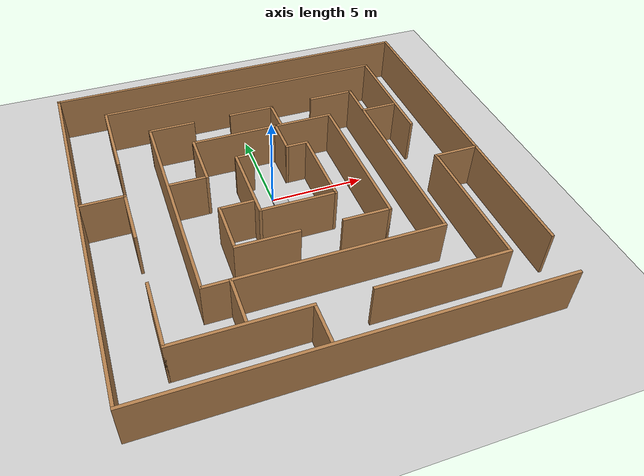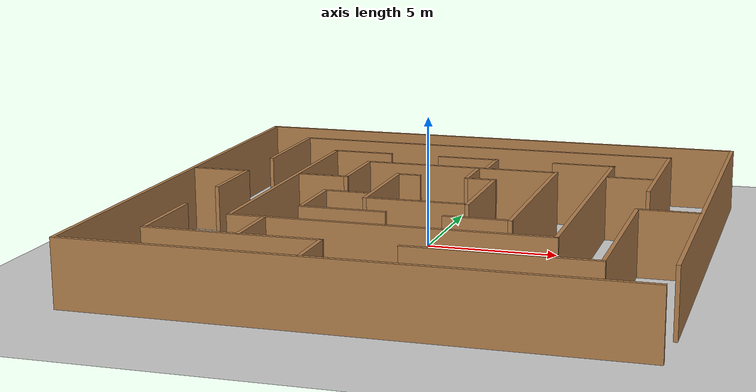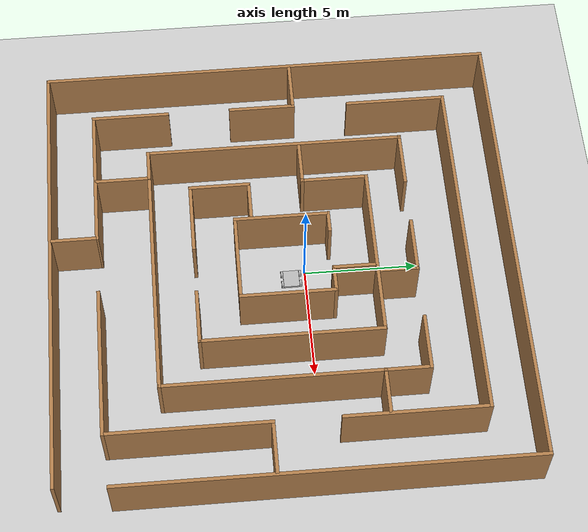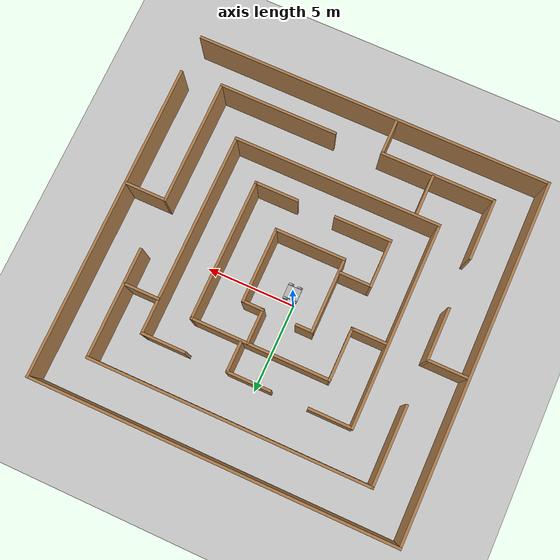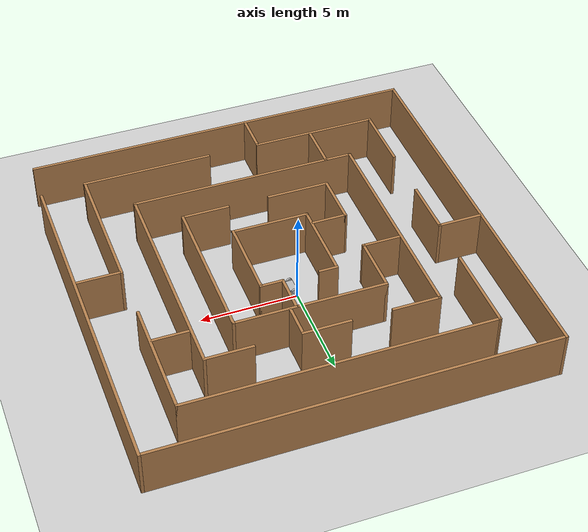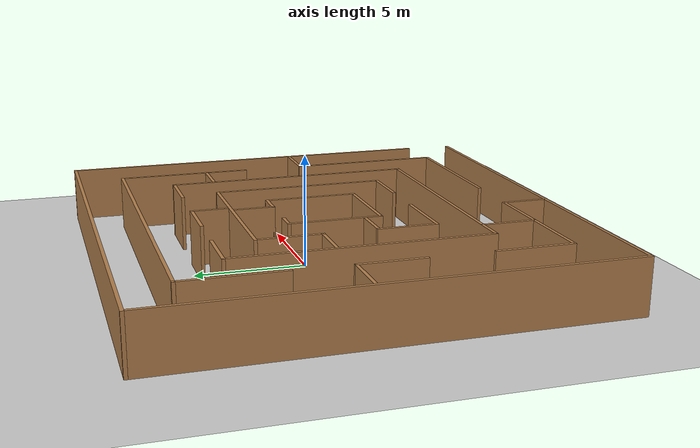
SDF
<sdf version="1.7">
 <world name="default">
  <light name="sun" type="directional">
   <pose>0 0 10 0 -0 0</pose>
   <diffuse>0.8 0.8 0.8 1</diffuse>
   <specular>0.2 0.2 0.2 1</specular>
   <attenuation>
    <range>1000</range>
    <constant>0.9</constant>
    <linear>0.01</linear>
    <quadratic>0.001</quadratic>
   </attenuation>
   <direction>-0.5 0.1 -0.9</direction>
   <spot><inner_angle>0</inner_angle><outer_angle>0</outer_angle><falloff>0</falloff></spot>
  </light>
  <model name="ground_plane">
   <static>1</static>
   <link name="link">
    <collision name="collision">
     <geometry><plane><normal>0 0 1</normal><size>100 100</size></plane></geometry>
     <surface>
      <contact><collide_bitmask>65535</collide_bitmask></contact>
      <friction><ode><mu>100</mu><mu2>50</mu2></ode></friction>
     </surface>
    </collision>
    <visual name="visual">
     <cast_shadows>0</cast_shadows>
     <geometry><plane><normal>0 0 1</normal><size>100 100</size></plane></geometry>
     <material>
      <script><uri>file://media/materials/scripts/gazebo.material</uri><name>Gazebo/Grey</name></script>
     </material>
    </visual>
   </link>
  </model>
  <gravity>0 0 -9.8</gravity>
  <magnetic_field>6e-06 2.3e-05 -4.2e-05</magnetic_field>
  <atmosphere type="adiabatic"/>
  <physics type="ode">
   <max_step_size>0.001</max_step_size>
   <real_time_factor>1</real_time_factor>
   <real_time_update_rate>1000</real_time_update_rate>
  </physics>
  <scene><ambient>0.4 0.4 0.4 1</ambient><background>0.7 0.7 0.7 1</background><shadows>1</shadows></scene>
  <spherical_coordinates>
   <surface_model>EARTH_WGS84</surface_model>
   <latitude_deg>0</latitude_deg>
   <longitude_deg>0</longitude_deg>
   <elevation>0</elevation>
   <heading_deg>0</heading_deg>
  </spherical_coordinates>
  <model name="robot">
   <link name="base_footprint">
    <inertial>
     <pose>0 0 0.135 0 -0 0</pose>
     <mass>0.5</mass>
     <inertia><ixx>0.0415</ixx><ixy>0</ixy><ixz>0</ixz><iyy>0.0415</iyy><iyz>0</iyz><izz>0.0415</izz></inertia>
    </inertial>
    <collision name="base_footprint_fixed_joint_lump__base_link_collision">
     <pose>0 0 0.135 0 -0 0</pose>
     <geometry><box><size>0.8 0.7 0.1</size></box></geometry>
    </collision>
    <visual name="base_footprint_fixed_joint_lump__base_link_visual">
     <pose>0 0 0.135 0 -0 0</pose>
     <geometry><box><size>0.8 0.7 0.1</size></box></geometry>
    </visual>
   </link>
   <joint name="wheel_front_left_joint" type="revolute">
    <pose relative_to="base_footprint">-0.25 -0.4 0.135 0 -0 0</pose>
    <parent>base_footprint</parent>
    <child>wheel_front_left_link</child>
    <axis>
     <xyz>0 1 0</xyz>
     <limit><effort>1000</effort><velocity>100</velocity><lower>-1e+16</lower><upper>1e+16</upper></limit>
     <dynamics>
      <damping>1</damping>
      <friction>1</friction>
      <spring_reference>0</spring_reference>
      <spring_stiffness>0</spring_stiffness>
     </dynamics>
    </axis>
   </joint>
   <link name="wheel_front_left_link">
    <pose relative_to="wheel_front_left_joint">0 0 0 0 -0 0</pose>
    <inertial>
     <mass>0.25</mass>
     <inertia><ixx>0.01125</ixx><ixy>0</ixy><ixz>0</ixz><iyy>0.01125</iyy><iyz>0</iyz><izz>0.01125</izz></inertia>
    </inertial>
    <collision name="wheel_front_left_link_collision">
     <pose>0 0 0 1.57 -0 0</pose>
     <geometry><cylinder><length>0.1</length><radius>0.15</radius></cylinder></geometry>
    </collision>
    <visual name="wheel_front_left_link_fixed_joint_lump__wheel_front_left_visual_visual">
     <pose>0 0 0 1.57 -0 0</pose>
     <geometry><cylinder><length>0.1</length><radius>0.15</radius></cylinder></geometry>
    </visual>
   </link>
   <joint name="wheel_front_right_joint" type="revolute">
    <pose relative_to="base_footprint">-0.25 0.4 0.135 0 -0 0</pose>
    <parent>base_footprint</parent>
    <child>wheel_front_right_link</child>
    <axis>
     <xyz>0 1 0</xyz>
     <limit><effort>1000</effort><velocity>100</velocity><lower>-1e+16</lower><upper>1e+16</upper></limit>
     <dynamics>
      <damping>1</damping>
      <friction>1</friction>
      <spring_reference>0</spring_reference>
      <spring_stiffness>0</spring_stiffness>
     </dynamics>
    </axis>
   </joint>
   <link name="wheel_front_right_link">
    <pose relative_to="wheel_front_right_joint">0 0 0 0 -0 0</pose>
    <inertial>
     <mass>0.25</mass>
     <inertia><ixx>0.01125</ixx><ixy>0</ixy><ixz>0</ixz><iyy>0.01125</iyy><iyz>0</iyz><izz>0.01125</izz></inertia>
    </inertial>
    <collision name="wheel_front_right_link_collision">
     <pose>0 0 0 1.57 -0 0</pose>
     <geometry><cylinder><length>0.1</length><radius>0.15</radius></cylinder></geometry>
    </collision>
    <visual name="wheel_front_right_link_fixed_joint_lump__wheel_front_right_visual_visual">
     <pose>0 0 0 1.57 -0 0</pose>
     <geometry><cylinder><length>0.1</length><radius>0.15</radius></cylinder></geometry>
    </visual>
   </link>
   <joint name="wheel_rear_left_joint" type="revolute">
    <pose relative_to="base_footprint">0.25 -0.4 0.135 0 -0 0</pose>
    <parent>base_footprint</parent>
    <child>wheel_rear_left_link</child>
    <axis>
     <xyz>0 1 0</xyz>
     <limit><effort>1000</effort><velocity>100</velocity><lower>-1e+16</lower><upper>1e+16</upper></limit>
     <dynamics>
      <damping>1</damping>
      <friction>1</friction>
      <spring_reference>0</spring_reference>
      <spring_stiffness>0</spring_stiffness>
     </dynamics>
    </axis>
   </joint>
   <link name="wheel_rear_left_link">
    <pose relative_to="wheel_rear_left_joint">0 0 0 0 -0 0</pose>
    <inertial>
     <mass>0.25</mass>
     <inertia><ixx>0.01125</ixx><ixy>0</ixy><ixz>0</ixz><iyy>0.01125</iyy><iyz>0</iyz><izz>0.01125</izz></inertia>
    </inertial>
    <collision name="wheel_rear_left_link_collision">
     <pose>0 0 0 1.57 -0 0</pose>
     <geometry><cylinder><length>0.1</length><radius>0.15</radius></cylinder></geometry>
    </collision>
    <visual name="wheel_rear_left_link_fixed_joint_lump__wheel_rear_left_visual_visual">
     <pose>0 0 0 1.57 -0 0</pose>
     <geometry><cylinder><length>0.1</length><radius>0.15</radius></cylinder></geometry>
    </visual>
   </link>
   <joint name="wheel_rear_right_joint" type="revolute">
    <pose relative_to="base_footprint">0.25 0.4 0.135 0 -0 0</pose>
    <parent>base_footprint</parent>
    <child>wheel_rear_right_link</child>
    <axis>
     <xyz>0 1 0</xyz>
     <limit><effort>1000</effort><velocity>100</velocity><lower>-1e+16</lower><upper>1e+16</upper></limit>
     <dynamics>
      <damping>1</damping>
      <friction>1</friction>
      <spring_reference>0</spring_reference>
      <spring_stiffness>0</spring_stiffness>
     </dynamics>
    </axis>
   </joint>
   <link name="wheel_rear_right_link">
    <pose relative_to="wheel_rear_right_joint">0 0 0 0 -0 0</pose>
    <inertial>
     <mass>0.25</mass>
     <inertia><ixx>0.01125</ixx><ixy>0</ixy><ixz>0</ixz><iyy>0.01125</iyy><iyz>0</iyz><izz>0.01125</izz></inertia>
    </inertial>
    <collision name="wheel_rear_right_link_collision">
     <pose>0 0 0 1.57 -0 0</pose>
     <geometry><cylinder><length>0.1</length><radius>0.15</radius></cylinder></geometry>
    </collision>
    <visual name="wheel_rear_right_link_fixed_joint_lump__wheel_rear_right_visual_visual">
     <pose>0 0 0 1.57 -0 0</pose>
     <geometry><cylinder><length>0.1</length><radius>0.15</radius></cylinder></geometry>
    </visual>
   </link>
   <static>0</static>
   <plugin name="skid_steer_drive_controller" filename="libgazebo_ros_skid_steer_drive.so">
    <updateRate>100.0</updateRate>
    <robotNamespace>/</robotNamespace>
    <leftFrontJoint>wheel_front_left_joint</leftFrontJoint>
    <rightFrontJoint>wheel_front_right_joint</rightFrontJoint>
    <leftRearJoint>wheel_rear_left_joint</leftRearJoint>
    <rightRearJoint>wheel_rear_right_joint</rightRearJoint>
    <wheelSeparation>0.8</wheelSeparation>
    <wheelDiameter>0.3</wheelDiameter>
    <robotBaseFrame>base_footprint</robotBaseFrame>
    <torque>10</torque>
    <topicName>cmd_vel</topicName>
    <odometryTopic>odom</odometryTopic>
    <odometryFrame>odom</odometryFrame>
    <commandTopic>cmd_vel</commandTopic>
    <topic_name_twist>cmd_vel</topic_name_twist>
    <topic_name_odometry>odom</topic_name_odometry>
    <topic_name_joint>joint</topic_name_joint>
    <broadcastTF>1</broadcastTF>
    <covariance_x>0.0001</covariance_x>
    <covariance_y>0.0001</covariance_y>
    <covariance_yaw>0.01</covariance_yaw>
   </plugin>
   <pose>0.315821 -0.624867 0.015019 2e-05 1.3e-05 0.009214</pose>
  </model>
  <model name="new_world.world">
   <pose>0.40995 -1.00865 0 0 -0 0</pose>
   <link name="Wall_0">
    <collision name="Wall_0_Collision">
     <geometry><box><size>20.25 0.15 2.5</size></box></geometry>
     <pose>0 0 1.25 0 -0 0</pose>
    </collision>
    <visual name="Wall_0_Visual">
     <pose>0 0 1.25 0 -0 0</pose>
     <geometry><box><size>20.25 0.15 2.5</size></box></geometry>
     <material>
      <script><uri>file://media/materials/scripts/gazebo.material</uri><name>Gazebo/Wood</name></script>
      <ambient>1 1 1 1</ambient>
     </material>
     <meta><layer>0</layer></meta>
    </visual>
    <pose>-10.1228 1e-05 0 0 -0 -1.5708</pose>
   </link>
   <link name="Wall_101">
    <collision name="Wall_101_Collision">
     <geometry><box><size>2 0.15 2.5</size></box></geometry>
     <pose>0 0 1.25 0 -0 0</pose>
    </collision>
    <visual name="Wall_101_Visual">
     <pose>0 0 1.25 0 -0 0</pose>
     <geometry><box><size>2 0.15 2.5</size></box></geometry>
     <material>
      <script><uri>file://media/materials/scripts/gazebo.material</uri><name>Gazebo/Wood</name></script>
      <ambient>1 1 1 1</ambient>
     </material>
     <meta><layer>0</layer></meta>
    </visual>
    <pose>6.80976 3.82073 0 0 -0 0</pose>
   </link>
   <link name="Wall_11">
    <collision name="Wall_11_Collision">
     <geometry><box><size>6.5 0.15 2.5</size></box></geometry>
     <pose>0 0 1.25 0 -0 0</pose>
    </collision>
    <visual name="Wall_11_Visual">
     <pose>0 0 1.25 0 -0 0</pose>
     <geometry><box><size>6.5 0.15 2.5</size></box></geometry>
     <material>
      <script><uri>file://media/materials/scripts/gazebo.material</uri><name>Gazebo/Wood</name></script>
      <ambient>1 1 1 1</ambient>
     </material>
     <meta><layer>0</layer></meta>
    </visual>
    <pose>-4.67764 -8.00551 0 0 -0 0</pose>
   </link>
   <link name="Wall_13">
    <collision name="Wall_13_Collision">
     <geometry><box><size>2 0.15 2.5</size></box></geometry>
     <pose>0 0 1.25 0 -0 0</pose>
    </collision>
    <visual name="Wall_13_Visual">
     <pose>0 0 1.25 0 -0 0</pose>
     <geometry><box><size>2 0.15 2.5</size></box></geometry>
     <material>
      <script><uri>file://media/materials/scripts/gazebo.material</uri><name>Gazebo/Wood</name></script>
      <ambient>1 1 1 1</ambient>
     </material>
     <meta><layer>0</layer></meta>
    </visual>
    <pose>-1.50264 -9.02101 0 0 -0 -1.5708</pose>
   </link>
   <link name="Wall_15">
    <collision name="Wall_15_Collision">
     <geometry><box><size>3.5 0.15 2.5</size></box></geometry>
     <pose>0 0 1.25 0 -0 0</pose>
    </collision>
    <visual name="Wall_15_Visual">
     <pose>0 0 1.25 0 -0 0</pose>
     <geometry><box><size>3.5 0.15 2.5</size></box></geometry>
     <material>
      <script><uri>file://media/materials/scripts/gazebo.material</uri><name>Gazebo/Wood</name></script>
      <ambient>1 1 1 1</ambient>
     </material>
     <meta><layer>0</layer></meta>
    </visual>
    <pose>-7.85264 -6.33051 0 0 -0 -1.5708</pose>
   </link>
   <link name="Wall_18">
    <collision name="Wall_18_Collision">
     <geometry><box><size>3 0.15 2.5</size></box></geometry>
     <pose>0 0 1.25 0 -0 0</pose>
    </collision>
    <visual name="Wall_18_Visual">
     <pose>0 0 1.25 0 -0 0</pose>
     <geometry><box><size>3 0.15 2.5</size></box></geometry>
     <material>
      <script><uri>file://media/materials/scripts/gazebo.material</uri><name>Gazebo/Wood</name></script>
      <ambient>1 1 1 1</ambient>
     </material>
     <meta><layer>0</layer></meta>
    </visual>
    <pose>-7.85264 -0.330506 0 0 -0 -1.5708</pose>
   </link>
   <link name="Wall_20">
    <collision name="Wall_20_Collision">
     <geometry><box><size>2.25 0.15 2.5</size></box></geometry>
     <pose>0 0 1.25 0 -0 0</pose>
    </collision>
    <visual name="Wall_20_Visual">
     <pose>0 0 1.25 0 -0 0</pose>
     <geometry><box><size>2.25 0.15 2.5</size></box></geometry>
     <material>
      <script><uri>file://media/materials/scripts/gazebo.material</uri><name>Gazebo/Wood</name></script>
      <ambient>1 1 1 1</ambient>
     </material>
     <meta><layer>0</layer></meta>
    </visual>
    <pose>-8.95542 1.09449 0 0 -0 3.14159</pose>
   </link>
   <link name="Wall_24">
    <collision name="Wall_24_Collision">
     <geometry><box><size>15.75 0.15 2.5</size></box></geometry>
     <pose>0 0 1.25 0 -0 0</pose>
    </collision>
    <visual name="Wall_24_Visual">
     <pose>0 0 1.25 0 -0 0</pose>
     <geometry><box><size>15.75 0.15 2.5</size></box></geometry>
     <material>
      <script><uri>file://media/materials/scripts/gazebo.material</uri><name>Gazebo/Wood</name></script>
      <ambient>1 1 1 1</ambient>
     </material>
     <meta><layer>0</layer></meta>
    </visual>
    <pose>0.018026 7.97046 0 0 -0 0</pose>
   </link>
   <link name="Wall_27">
    <collision name="Wall_27_Collision">
     <geometry><box><size>4.5 0.15 2.5</size></box></geometry>
     <pose>0 0 1.25 0 -0 0</pose>
    </collision>
    <visual name="Wall_27_Visual">
     <pose>0 0 1.25 0 -0 0</pose>
     <geometry><box><size>4.5 0.15 2.5</size></box></geometry>
     <material>
      <script><uri>file://media/materials/scripts/gazebo.material</uri><name>Gazebo/Wood</name></script>
      <ambient>1 1 1 1</ambient>
     </material>
     <meta><layer>0</layer></meta>
    </visual>
    <pose>-7.78197 5.79546 0 0 -0 -1.5708</pose>
   </link>
   <link name="Wall_31">
    <collision name="Wall_31_Collision">
     <geometry><box><size>6.25 0.15 2.5</size></box></geometry>
     <pose>0 0 1.25 0 -0 0</pose>
    </collision>
    <visual name="Wall_31_Visual">
     <pose>0 0 1.25 0 -0 0</pose>
     <geometry><box><size>6.25 0.15 2.5</size></box></geometry>
     <material>
      <script><uri>file://media/materials/scripts/gazebo.material</uri><name>Gazebo/Wood</name></script>
      <ambient>1 1 1 1</ambient>
     </material>
     <meta><layer>0</layer></meta>
    </visual>
    <pose>7.81803 4.92046 0 0 -0 -1.5708</pose>
   </link>
   <link name="Wall_33">
    <collision name="Wall_33_Collision">
     <geometry><box><size>6.75 0.15 2.5</size></box></geometry>
     <pose>0 0 1.25 0 -0 0</pose>
    </collision>
    <visual name="Wall_33_Visual">
     <pose>0 0 1.25 0 -0 0</pose>
     <geometry><box><size>6.75 0.15 2.5</size></box></geometry>
     <material>
      <script><uri>file://media/materials/scripts/gazebo.material</uri><name>Gazebo/Wood</name></script>
      <ambient>1 1 1 1</ambient>
     </material>
     <meta><layer>0</layer></meta>
    </visual>
    <pose>4.51809 -8.00583 0 0 -0 0</pose>
   </link>
   <link name="Wall_35">
    <collision name="Wall_35_Collision">
     <geometry><box><size>7 0.15 2.5</size></box></geometry>
     <pose>0 0 1.25 0 -0 0</pose>
    </collision>
    <visual name="Wall_35_Visual">
     <pose>0 0 1.25 0 -0 0</pose>
     <geometry><box><size>7 0.15 2.5</size></box></geometry>
     <material>
      <script><uri>file://media/materials/scripts/gazebo.material</uri><name>Gazebo/Wood</name></script>
      <ambient>1 1 1 1</ambient>
     </material>
     <meta><layer>0</layer></meta>
    </visual>
    <pose>7.81808 -4.45465 0 0 -0 -1.5708</pose>
   </link>
   <link name="Wall_37">
    <collision name="Wall_37_Collision">
     <geometry><box><size>11.5 0.15 2.5</size></box></geometry>
     <pose>0 0 1.25 0 -0 0</pose>
    </collision>
    <visual name="Wall_37_Visual">
     <pose>0 0 1.25 0 -0 0</pose>
     <geometry><box><size>11.5 0.15 2.5</size></box></geometry>
     <material>
      <script><uri>file://media/materials/scripts/gazebo.material</uri><name>Gazebo/Wood</name></script>
      <ambient>1 1 1 1</ambient>
     </material>
     <meta><layer>0</layer></meta>
    </visual>
    <pose>-5.75079 0.065393 0 0 -0 -1.5708</pose>
   </link>
   <link name="Wall_39">
    <collision name="Wall_39_Collision">
     <geometry><box><size>11.75 0.15 2.5</size></box></geometry>
     <pose>0 0 1.25 0 -0 0</pose>
    </collision>
    <visual name="Wall_39_Visual">
     <pose>0 0 1.25 0 -0 0</pose>
     <geometry><box><size>11.75 0.15 2.5</size></box></geometry>
     <material>
      <script><uri>file://media/materials/scripts/gazebo.material</uri><name>Gazebo/Wood</name></script>
      <ambient>1 1 1 1</ambient>
     </material>
     <meta><layer>0</layer></meta>
    </visual>
    <pose>0.04921 -5.60961 0 0 -0 0</pose>
   </link>
   <link name="Wall_4">
    <collision name="Wall_4_Collision">
     <geometry><box><size>20.25 0.15 2.5</size></box></geometry>
     <pose>0 0 1.25 0 -0 0</pose>
    </collision>
    <visual name="Wall_4_Visual">
     <pose>0 0 1.25 0 -0 0</pose>
     <geometry><box><size>20.25 0.15 2.5</size></box></geometry>
     <material>
      <script><uri>file://media/materials/scripts/gazebo.material</uri><name>Gazebo/Wood</name></script>
      <ambient>1 1 1 1</ambient>
     </material>
     <meta><layer>0</layer></meta>
    </visual>
    <pose>-0.072822 -10.05 0 0 -0 0</pose>
   </link>
   <link name="Wall_41">
    <collision name="Wall_41_Collision">
     <geometry><box><size>2.25 0.15 2.5</size></box></geometry>
     <pose>0 0 1.25 0 -0 0</pose>
    </collision>
    <visual name="Wall_41_Visual">
     <pose>0 0 1.25 0 -0 0</pose>
     <geometry><box><size>2.25 0.15 2.5</size></box></geometry>
     <material>
      <script><uri>file://media/materials/scripts/gazebo.material</uri><name>Gazebo/Wood</name></script>
      <ambient>1 1 1 1</ambient>
     </material>
     <meta><layer>0</layer></meta>
    </visual>
    <pose>8.97999 -1.02965 0 0 -0 0</pose>
   </link>
   <link name="Wall_43">
    <collision name="Wall_43_Collision">
     <geometry><box><size>11.5 0.15 2.5</size></box></geometry>
     <pose>0 0 1.25 0 -0 0</pose>
    </collision>
    <visual name="Wall_43_Visual">
     <pose>0 0 1.25 0 -0 0</pose>
     <geometry><box><size>11.5 0.15 2.5</size></box></geometry>
     <material>
      <script><uri>file://media/materials/scripts/gazebo.material</uri><name>Gazebo/Wood</name></script>
      <ambient>1 1 1 1</ambient>
     </material>
     <meta><layer>0</layer></meta>
    </visual>
    <pose>5.84921 0.065393 0 0 -0 -1.5708</pose>
   </link>
   <link name="Wall_45">
    <collision name="Wall_45_Collision">
     <geometry><box><size>2.5 0.15 2.5</size></box></geometry>
     <pose>0 0 1.25 0 -0 0</pose>
    </collision>
    <visual name="Wall_45_Visual">
     <pose>0 0 1.25 0 -0 0</pose>
     <geometry><box><size>2.5 0.15 2.5</size></box></geometry>
     <material>
      <script><uri>file://media/materials/scripts/gazebo.material</uri><name>Gazebo/Wood</name></script>
      <ambient>1 1 1 1</ambient>
     </material>
     <meta><layer>0</layer></meta>
    </visual>
    <pose>-4.57579 5.7404 0 0 -0 0</pose>
   </link>
   <link name="Wall_47">
    <collision name="Wall_47_Collision">
     <geometry><box><size>2.5 0.15 2.5</size></box></geometry>
     <pose>0 0 1.25 0 -0 0</pose>
    </collision>
    <visual name="Wall_47_Visual">
     <pose>0 0 1.25 0 -0 0</pose>
     <geometry><box><size>2.5 0.15 2.5</size></box></geometry>
     <material>
      <script><uri>file://media/materials/scripts/gazebo.material</uri><name>Gazebo/Wood</name></script>
      <ambient>1 1 1 1</ambient>
     </material>
     <meta><layer>0</layer></meta>
    </visual>
    <pose>4.67421 5.74039 0 0 -0 0</pose>
   </link>
   <link name="Wall_49">
    <collision name="Wall_49_Collision">
     <geometry><box><size>2.5 0.15 2.5</size></box></geometry>
     <pose>0 0 1.25 0 -0 0</pose>
    </collision>
    <visual name="Wall_49_Visual">
     <pose>0 0 1.25 0 -0 0</pose>
     <geometry><box><size>2.5 0.15 2.5</size></box></geometry>
     <material>
      <script><uri>file://media/materials/scripts/gazebo.material</uri><name>Gazebo/Wood</name></script>
      <ambient>1 1 1 1</ambient>
     </material>
     <meta><layer>0</layer></meta>
    </visual>
    <pose>-0.07579 5.7404 0 0 -0 0</pose>
   </link>
   <link name="Wall_51">
    <collision name="Wall_51_Collision">
     <geometry><box><size>7.80201 0.15 2.5</size></box></geometry>
     <pose>0 0 1.25 0 -0 0</pose>
    </collision>
    <visual name="Wall_51_Visual">
     <pose>0 0 1.25 0 -0 0</pose>
     <geometry><box><size>7.80201 0.15 2.5</size></box></geometry>
     <material>
      <script><uri>file://media/materials/scripts/gazebo.material</uri><name>Gazebo/Wood</name></script>
      <ambient>1 1 1 1</ambient>
     </material>
     <meta><layer>0</layer></meta>
    </visual>
    <pose>0.06263 4.02839 0 0 -0 0</pose>
   </link>
   <link name="Wall_54">
    <collision name="Wall_54_Collision">
     <geometry><box><size>3 0.15 2.5</size></box></geometry>
     <pose>0 0 1.25 0 -0 0</pose>
    </collision>
    <visual name="Wall_54_Visual">
     <pose>0 0 1.25 0 -0 0</pose>
     <geometry><box><size>3 0.15 2.5</size></box></geometry>
     <material>
      <script><uri>file://media/materials/scripts/gazebo.material</uri><name>Gazebo/Wood</name></script>
      <ambient>1 1 1 1</ambient>
     </material>
     <meta><layer>0</layer></meta>
    </visual>
    <pose>-3.76338 2.60339 0 0 -0 -1.5708</pose>
   </link>
   <link name="Wall_58">
    <collision name="Wall_58_Collision">
     <geometry><box><size>2.75 0.15 2.5</size></box></geometry>
     <pose>0 0 1.25 0 -0 0</pose>
    </collision>
    <visual name="Wall_58_Visual">
     <pose>0 0 1.25 0 -0 0</pose>
     <geometry><box><size>2.75 0.15 2.5</size></box></geometry>
     <material>
      <script><uri>file://media/materials/scripts/gazebo.material</uri><name>Gazebo/Wood</name></script>
      <ambient>1 1 1 1</ambient>
     </material>
     <meta><layer>0</layer></meta>
    </visual>
    <pose>-3.76338 -2.52161 0 0 -0 -1.5708</pose>
   </link>
   <link name="Wall_6">
    <collision name="Wall_6_Collision">
     <geometry><box><size>20.25 0.15 2.5</size></box></geometry>
     <pose>0 0 1.25 0 -0 0</pose>
    </collision>
    <visual name="Wall_6_Visual">
     <pose>0 0 1.25 0 -0 0</pose>
     <geometry><box><size>20.25 0.15 2.5</size></box></geometry>
     <material>
      <script><uri>file://media/materials/scripts/gazebo.material</uri><name>Gazebo/Wood</name></script>
      <ambient>1 1 1 1</ambient>
     </material>
     <meta><layer>0</layer></meta>
    </visual>
    <pose>-0.072774 10.05 0 0 -0 0</pose>
   </link>
   <link name="Wall_60">
    <collision name="Wall_60_Collision">
     <geometry><box><size>3.25 0.15 2.5</size></box></geometry>
     <pose>0 0 1.25 0 -0 0</pose>
    </collision>
    <visual name="Wall_60_Visual">
     <pose>0 0 1.25 0 -0 0</pose>
     <geometry><box><size>3.25 0.15 2.5</size></box></geometry>
     <material>
      <script><uri>file://media/materials/scripts/gazebo.material</uri><name>Gazebo/Wood</name></script>
      <ambient>1 1 1 1</ambient>
     </material>
     <meta><layer>0</layer></meta>
    </visual>
    <pose>-2.21338 -3.82161 0 0 -0 0</pose>
   </link>
   <link name="Wall_70">
    <collision name="Wall_70_Collision">
     <geometry><box><size>8 0.15 2.5</size></box></geometry>
     <pose>0 0 1.25 0 -0 0</pose>
    </collision>
    <visual name="Wall_70_Visual">
     <pose>0 0 1.25 0 -0 0</pose>
     <geometry><box><size>8 0.15 2.5</size></box></geometry>
     <material>
      <script><uri>file://media/materials/scripts/gazebo.material</uri><name>Gazebo/Wood</name></script>
      <ambient>1 1 1 1</ambient>
     </material>
     <meta><layer>0</layer></meta>
    </visual>
    <pose>3.88864 0.103395 0 0 -0 -1.5708</pose>
   </link>
   <link name="Wall_72">
    <collision name="Wall_72_Collision">
     <geometry><box><size>2.5 0.15 2.5</size></box></geometry>
     <pose>0 0 1.25 0 -0 0</pose>
    </collision>
    <visual name="Wall_72_Visual">
     <pose>0 0 1.25 0 -0 0</pose>
     <geometry><box><size>2.5 0.15 2.5</size></box></geometry>
     <material>
      <script><uri>file://media/materials/scripts/gazebo.material</uri><name>Gazebo/Wood</name></script>
      <ambient>1 1 1 1</ambient>
     </material>
     <meta><layer>0</layer></meta>
    </visual>
    <pose>2.71364 -3.8216 0 0 -0 3.14159</pose>
   </link>
   <link name="Wall_74">
    <collision name="Wall_74_Collision">
     <geometry><box><size>1 0.15 2.5</size></box></geometry>
     <pose>0 0 1.25 0 -0 0</pose>
    </collision>
    <visual name="Wall_74_Visual">
     <pose>0 0 1.25 0 -0 0</pose>
     <geometry><box><size>1 0.15 2.5</size></box></geometry>
     <material>
      <script><uri>file://media/materials/scripts/gazebo.material</uri><name>Gazebo/Wood</name></script>
      <ambient>1 1 1 1</ambient>
     </material>
     <meta><layer>0</layer></meta>
    </visual>
    <pose>-1.54789 2.15322 0 0 -0 0</pose>
   </link>
   <link name="Wall_78">
    <collision name="Wall_78_Collision">
     <geometry><box><size>4.25 0.15 2.5</size></box></geometry>
     <pose>0 0 1.25 0 -0 0</pose>
    </collision>
    <visual name="Wall_78_Visual">
     <pose>0 0 1.25 0 -0 0</pose>
     <geometry><box><size>4.25 0.15 2.5</size></box></geometry>
     <material>
      <script><uri>file://media/materials/scripts/gazebo.material</uri><name>Gazebo/Wood</name></script>
      <ambient>1 1 1 1</ambient>
     </material>
     <meta><layer>0</layer></meta>
    </visual>
    <pose>-1.97289 0.103218 0 0 -0 -1.5708</pose>
   </link>
   <link name="Wall_80">
    <collision name="Wall_80_Collision">
     <geometry><box><size>4 0.15 2.5</size></box></geometry>
     <pose>0 0 1.25 0 -0 0</pose>
    </collision>
    <visual name="Wall_80_Visual">
     <pose>0 0 1.25 0 -0 0</pose>
     <geometry><box><size>4 0.15 2.5</size></box></geometry>
     <material>
      <script><uri>file://media/materials/scripts/gazebo.material</uri><name>Gazebo/Wood</name></script>
      <ambient>1 1 1 1</ambient>
     </material>
     <meta><layer>0</layer></meta>
    </visual>
    <pose>-0.047894 -1.94678 0 0 -0 0</pose>
   </link>
   <link name="Wall_82">
    <collision name="Wall_82_Collision">
     <geometry><box><size>4.25 0.15 2.5</size></box></geometry>
     <pose>0 0 1.25 0 -0 0</pose>
    </collision>
    <visual name="Wall_82_Visual">
     <pose>0 0 1.25 0 -0 0</pose>
     <geometry><box><size>4.25 0.15 2.5</size></box></geometry>
     <material>
      <script><uri>file://media/materials/scripts/gazebo.material</uri><name>Gazebo/Wood</name></script>
      <ambient>1 1 1 1</ambient>
     </material>
     <meta><layer>0</layer></meta>
    </visual>
    <pose>1.87711 0.103218 0 0 -0 1.5708</pose>
   </link>
   <link name="Wall_84">
    <collision name="Wall_84_Collision">
     <geometry><box><size>1.25 0.15 2.5</size></box></geometry>
     <pose>0 0 1.25 0 -0 0</pose>
    </collision>
    <visual name="Wall_84_Visual">
     <pose>0 0 1.25 0 -0 0</pose>
     <geometry><box><size>1.25 0.15 2.5</size></box></geometry>
     <material>
      <script><uri>file://media/materials/scripts/gazebo.material</uri><name>Gazebo/Wood</name></script>
      <ambient>1 1 1 1</ambient>
     </material>
     <meta><layer>0</layer></meta>
    </visual>
    <pose>1.32711 2.15322 0 0 -0 3.14159</pose>
   </link>
   <link name="Wall_88">
    <collision name="Wall_88_Collision">
     <geometry><box><size>1.75 0.15 2.5</size></box></geometry>
     <pose>0 0 1.25 0 -0 0</pose>
    </collision>
    <visual name="Wall_88_Visual">
     <pose>0 0 1.25 0 -0 0</pose>
     <geometry><box><size>1.75 0.15 2.5</size></box></geometry>
     <material>
      <script><uri>file://media/materials/scripts/gazebo.material</uri><name>Gazebo/Wood</name></script>
      <ambient>1 1 1 1</ambient>
     </material>
     <meta><layer>0</layer></meta>
    </visual>
    <pose>1.09921 4.94039 0 0 -0 -1.5708</pose>
   </link>
   <link name="Wall_9">
    <collision name="Wall_9_Collision">
     <geometry><box><size>18 0.15 2.5</size></box></geometry>
     <pose>0 0 1.25 0 -0 0</pose>
    </collision>
    <visual name="Wall_9_Visual">
     <pose>0 0 1.25 0 -0 0</pose>
     <geometry><box><size>18 0.15 2.5</size></box></geometry>
     <material>
      <script><uri>file://media/materials/scripts/gazebo.material</uri><name>Gazebo/Wood</name></script>
      <ambient>1 1 1 1</ambient>
     </material>
     <meta><layer>0</layer></meta>
    </visual>
    <pose>10.1228 1.12502 0 0 -0 -1.5708</pose>
   </link>
   <link name="Wall_90">
    <collision name="Wall_90_Collision">
     <geometry><box><size>2 0.15 2.5</size></box></geometry>
     <pose>0 0 1.25 0 -0 0</pose>
    </collision>
    <visual name="Wall_90_Visual">
     <pose>0 0 1.25 0 -0 0</pose>
     <geometry><box><size>2 0.15 2.5</size></box></geometry>
     <material>
      <script><uri>file://media/materials/scripts/gazebo.material</uri><name>Gazebo/Wood</name></script>
      <ambient>1 1 1 1</ambient>
     </material>
     <meta><layer>0</layer></meta>
    </visual>
    <pose>0.777106 3.07822 0 0 -0 1.5708</pose>
   </link>
   <link name="Wall_94">
    <collision name="Wall_94_Collision">
     <geometry><box><size>1.75 0.15 2.5</size></box></geometry>
     <pose>0 0 1.25 0 -0 0</pose>
    </collision>
    <visual name="Wall_94_Visual">
     <pose>0 0 1.25 0 -0 0</pose>
     <geometry><box><size>1.75 0.15 2.5</size></box></geometry>
     <material>
      <script><uri>file://media/materials/scripts/gazebo.material</uri><name>Gazebo/Wood</name></script>
      <ambient>1 1 1 1</ambient>
     </material>
     <meta><layer>0</layer></meta>
    </visual>
    <pose>-2.86724 -1.22161 0 0 -0 0</pose>
   </link>
   <link name="Wall_96">
    <collision name="Wall_96_Collision">
     <geometry><box><size>2 0.15 2.5</size></box></geometry>
     <pose>0 0 1.25 0 -0 0</pose>
    </collision>
    <visual name="Wall_96_Visual">
     <pose>0 0 1.25 0 -0 0</pose>
     <geometry><box><size>2 0.15 2.5</size></box></geometry>
     <material>
      <script><uri>file://media/materials/scripts/gazebo.material</uri><name>Gazebo/Wood</name></script>
      <ambient>1 1 1 1</ambient>
     </material>
     <meta><layer>0</layer></meta>
    </visual>
    <pose>-4.68838 1.1784 0 0 -0 3.14159</pose>
   </link>
   <link name="Wall_99">
    <collision name="Wall_99_Collision">
     <geometry><box><size>2.5 0.15 2.5</size></box></geometry>
     <pose>0 0 1.25 0 -0 0</pose>
    </collision>
    <visual name="Wall_99_Visual">
     <pose>0 0 1.25 0 -0 0</pose>
     <geometry><box><size>2.5 0.15 2.5</size></box></geometry>
     <material>
      <script><uri>file://media/materials/scripts/gazebo.material</uri><name>Gazebo/Wood</name></script>
      <ambient>1 1 1 1</ambient>
     </material>
     <meta><layer>0</layer></meta>
    </visual>
    <pose>-4.43228 -6.78482 0 0 -0 -1.5708</pose>
   </link>
   <static>1</static>
  </model>
 </world>
</sdf>
